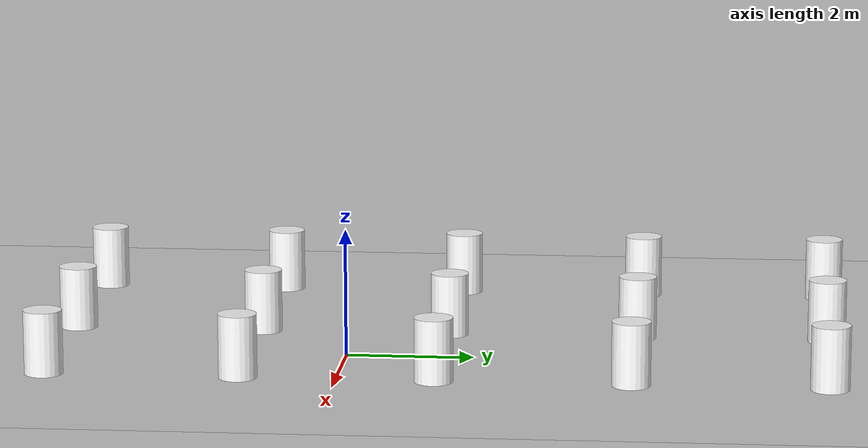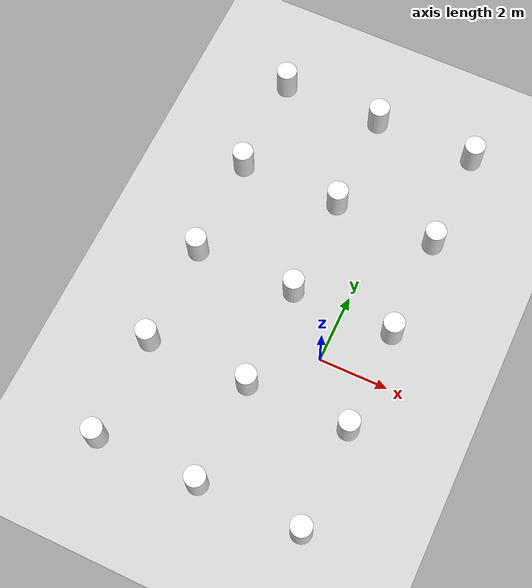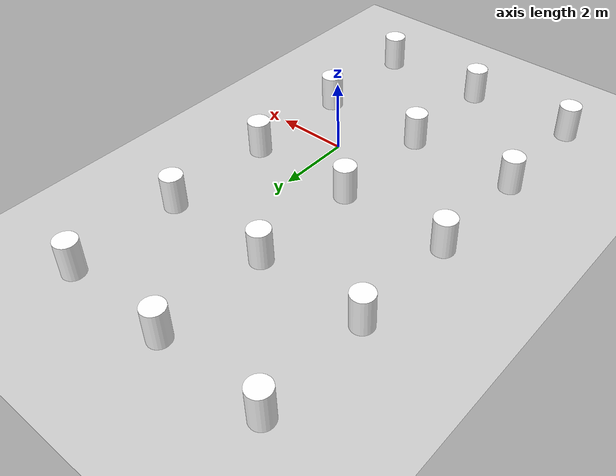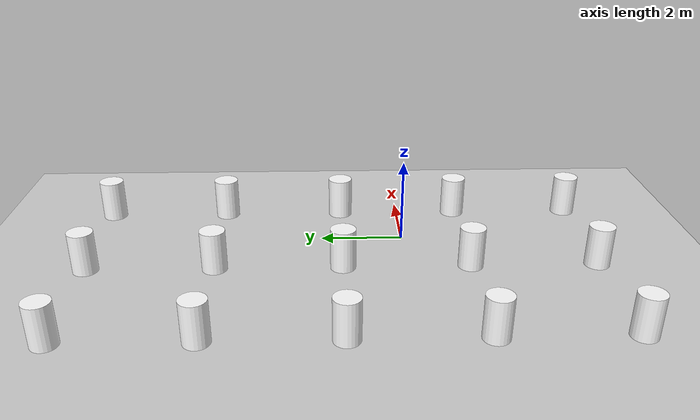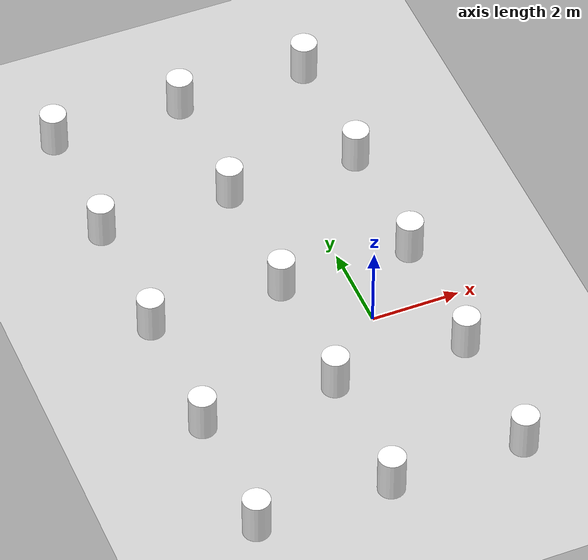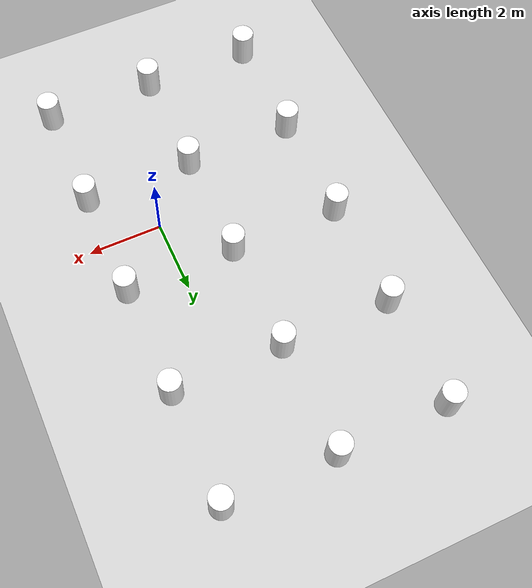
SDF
<?xml version="1.0"?>

<sdf version="1.6">
  <world name="turtlebot_world">
    <physics name="1ms" type="ignored">
      <max_step_size>0.001</max_step_size>
      <real_time_factor>1.0</real_time_factor>
    </physics>

    <plugin filename="ignition-gazebo-contact-system" name="gz::sim::systems::Contact" />
    <plugin filename="ignition-gazebo-imu-system" name="gz::sim::systems::Imu" />
    <plugin filename="ignition-gazebo-physics-system" name="gz::sim::systems::Physics" />
    <plugin filename="ignition-gazebo-scene-broadcaster-system"
      name="gz::sim::systems::SceneBroadcaster" />
    <plugin filename="ignition-gazebo-sensors-system" name="gz::sim::systems::Sensors" />
    <plugin filename="ignition-gazebo-user-commands-system" name="gz::sim::systems::UserCommands" />

    <spherical_coordinates>
      <surface_model>EARTH_WGS84</surface_model>
      <world_frame_orientation>ENU</world_frame_orientation>
      <latitude_deg>50.088384</latitude_deg>
      <longitude_deg>19.939128</longitude_deg>
      <elevation>0</elevation>
      <heading_deg>0</heading_deg>
    </spherical_coordinates>

    <light type="directional" name="sun">
      <cast_shadows>true</cast_shadows>
      <pose>0 0 10 0 0 0</pose>
      <diffuse>0.8 0.8 0.8 1</diffuse>
      <specular>0.2 0.2 0.2 1</specular>
      <attenuation>
        <range>1000</range>
        <constant>0.9</constant>
        <linear>0.01</linear>
        <quadratic>0.001</quadratic>
      </attenuation>
      <direction>-0.5 0.1 -0.9</direction>
    </light>

    <model name="ground_plane">
      <static>true</static>
      <link name="link">
        <collision name="collision">
          <geometry>
            <plane>
              <normal>0 0 1</normal>
              <size>100 100</size>
            </plane>
          </geometry>
        </collision>
        <visual name="visual">
          <geometry>
            <plane>
              <normal>0 0 1</normal>
              <size>100 100</size>
            </plane>
          </geometry>
          <material>
            <ambient>0.8 0.8 0.8 1</ambient>
            <diffuse>0.8 0.8 0.8 1</diffuse>
            <specular>0.8 0.8 0.8 1</specular>
          </material>
        </visual>
      </link>
    </model>

    <model name='ros_symbol'>
      <static>1</static>
      <link name='symbol'>

        <!-- Updated cylinder specifications with additional 1.5 meter distance -->
        <collision name='one_one'>
          <pose>-4.5 -4.5 0.5 0 0 0</pose>
          <geometry>
            <cylinder>
              <radius>0.3</radius>
              <length>1.0</length>
            </cylinder>
          </geometry>
          <max_contacts>10</max_contacts>
          <surface>
            <bounce/>
            <friction>
              <ode/>
            </friction>
            <contact>
              <ode/>
            </contact>
          </surface>
        </collision>

        <visual name='one_one'>
          <pose>-4.5 -4.5 0.5 0 0 0</pose>
          <geometry>
            <cylinder>
              <radius>0.3</radius>
              <length>1.0</length>
            </cylinder>
          </geometry>
          <material>
            <ambient>1 1 1 1</ambient>
            <diffuse>1 1 1 1</diffuse>
            <specular>1 1 1 1</specular>
          </material>
        </visual>

        <collision name='one_two'>
          <pose>-4.5 -1.5 0.5 0 0 0</pose>
          <geometry>
            <cylinder>
              <radius>0.3</radius>
              <length>1.0</length>
            </cylinder>
          </geometry>
          <max_contacts>10</max_contacts>
          <surface>
            <bounce/>
            <friction>
              <ode/>
            </friction>
            <contact>
              <ode/>
            </contact>
          </surface>
        </collision>

        <visual name='one_two'>
          <pose>-4.5 -1.5 0.5 0 0 0</pose>
          <geometry>
            <cylinder>
              <radius>0.3</radius>
              <length>1.0</length>
            </cylinder>
          </geometry>
          <material>
            <ambient>1 1 1 1</ambient>
            <diffuse>1 1 1 1</diffuse>
            <specular>1 1 1 1</specular>
          </material>
        </visual>

        <collision name='one_three'>
          <pose>-4.5 1.5 0.5 0 0 0</pose>
          <geometry>
            <cylinder>
              <radius>0.3</radius>
              <length>1.0</length>
            </cylinder>
          </geometry>
          <max_contacts>10</max_contacts>
          <surface>
            <bounce/>
            <friction>
              <ode/>
            </friction>
            <contact>
              <ode/>
            </contact>
          </surface>
        </collision>

        <visual name='one_three'>
          <pose>-4.5 1.5 0.5 0 0 0</pose>
          <geometry>
            <cylinder>
              <radius>0.3</radius>
              <length>1.0</length>
            </cylinder>
          </geometry>
          <material>
            <ambient>1 1 1 1</ambient>
            <diffuse>1 1 1 1</diffuse>
            <specular>1 1 1 1</specular>
          </material>
        </visual>

        <collision name='one_four'>
          <pose>-4.5 4.5 0.5 0 0 0</pose>
          <geometry>
            <cylinder>
              <radius>0.3</radius>
              <length>1.0</length>
            </cylinder>
          </geometry>
          <max_contacts>10</max_contacts>
          <surface>
            <bounce/>
            <friction>
              <ode/>
            </friction>
            <contact>
              <ode/>
            </contact>
          </surface>
        </collision>

        <visual name='one_four'>
          <pose>-4.5 4.5 0.5 0 0 0</pose>
          <geometry>
            <cylinder>
              <radius>0.3</radius>
              <length>1.0</length>
            </cylinder>
          </geometry>
          <material>
            <ambient>1 1 1 1</ambient>
            <diffuse>1 1 1 1</diffuse>
            <specular>1 1 1 1</specular>
          </material>
        </visual>

        <collision name='one_five'>
          <pose>-4.5 7.5 0.5 0 0 0</pose>
          <geometry>
            <cylinder>
              <radius>0.3</radius>
              <length>1.0</length>
            </cylinder>
          </geometry>
          <max_contacts>10</max_contacts>
          <surface>
            <bounce/>
            <friction>
              <ode/>
            </friction>
            <contact>
              <ode/>
            </contact>
          </surface>
        </collision>

        <visual name='one_five'>
          <pose>-4.5 7.5 0.5 0 0 0</pose>
          <geometry>
            <cylinder>
              <radius>0.3</radius>
              <length>1.0</length>
            </cylinder>
          </geometry>
          <material>
            <ambient>1 1 1 1</ambient>
            <diffuse>1 1 1 1</diffuse>
            <specular>1 1 1 1</specular>
          </material>
        </visual>

        <!-- Repeat the pattern for the 5x5 grid with increased distance -->
        <!-- The rest of the cylinders -->

        <!-- Two row -->
        <collision name='two_one'>
          <pose>-1.5 -4.5 0.5 0 0 0</pose>
          <geometry>
            <cylinder>
              <radius>0.3</radius>
              <length>1.0</length>
            </cylinder>
          </geometry>
          <max_contacts>10</max_contacts>
          <surface>
            <bounce/>
            <friction>
              <ode/>
            </friction>
            <contact>
              <ode/>
            </contact>
          </surface>
        </collision>

        <visual name='two_one'>
          <pose>-1.5 -4.5 0.5 0 0 0</pose>
          <geometry>
            <cylinder>
              <radius>0.3</radius>
              <length>1.0</length>
            </cylinder>
          </geometry>
          <material>
            <ambient>1 1 1 1</ambient>
            <diffuse>1 1 1 1</diffuse>
            <specular>1 1 1 1</specular>
          </material>
        </visual>

        <collision name='two_two'>
          <pose>-1.5 -1.5 0.5 0 0 0</pose>
          <geometry>
            <cylinder>
              <radius>0.3</radius>
              <length>1.0</length>
            </cylinder>
          </geometry>
          <max_contacts>10</max_contacts>
          <surface>
            <bounce/>
            <friction>
              <ode/>
            </friction>
            <contact>
              <ode/>
            </contact>
          </surface>
        </collision>

        <visual name='two_two'>
          <pose>-1.5 -1.5 0.5 0 0 0</pose>
          <geometry>
            <cylinder>
              <radius>0.3</radius>
              <length>1.0</length>
            </cylinder>
          </geometry>
          <material>
            <ambient>1 1 1 1</ambient>
            <diffuse>1 1 1 1</diffuse>
            <specular>1 1 1 1</specular>
          </material>
        </visual>

        <collision name='two_three'>
          <pose>-1.5 1.5 0.5 0 0 0</pose>
          <geometry>
            <cylinder>
              <radius>0.3</radius>
              <length>1.0</length>
            </cylinder>
          </geometry>
          <max_contacts>10</max_contacts>
          <surface>
            <bounce/>
            <friction>
              <ode/>
            </friction>
            <contact>
              <ode/>
            </contact>
          </surface>
        </collision>

        <visual name='two_three'>
          <pose>-1.5 1.5 0.5 0 0 0</pose>
          <geometry>
            <cylinder>
              <radius>0.3</radius>
              <length>1.0</length>
            </cylinder>
          </geometry>
          <material>
            <ambient>1 1 1 1</ambient>
            <diffuse>1 1 1 1</diffuse>
            <specular>1 1 1 1</specular>
          </material>
        </visual>

        <collision name='two_four'>
          <pose>-1.5 4.5 0.5 0 0 0</pose>
          <geometry>
            <cylinder>
              <radius>0.3</radius>
              <length>1.0</length>
            </cylinder>
          </geometry>
          <max_contacts>10</max_contacts>
          <surface>
            <bounce/>
            <friction>
              <ode/>
            </friction>
            <contact>
              <ode/>
            </contact>
          </surface>
        </collision>

        <visual name='two_four'>
          <pose>-1.5 4.5 0.5 0 0 0</pose>
          <geometry>
            <cylinder>
              <radius>0.3</radius>
              <length>1.0</length>
            </cylinder>
          </geometry>
          <material>
            <ambient>1 1 1 1</ambient>
            <diffuse>1 1 1 1</diffuse>
            <specular>1 1 1 1</specular>
          </material>
        </visual>

        <collision name='two_five'>
          <pose>-1.5 7.5 0.5 0 0 0</pose>
          <geometry>
            <cylinder>
              <radius>0.3</radius>
              <length>1.0</length>
            </cylinder>
          </geometry>
          <max_contacts>10</max_contacts>
          <surface>
            <bounce/>
            <friction>
              <ode/>
            </friction>
            <contact>
              <ode/>
            </contact>
          </surface>
        </collision>

        <visual name='two_five'>
          <pose>-1.5 7.5 0.5 0 0 0</pose>
          <geometry>
            <cylinder>
              <radius>0.3</radius>
              <length>1.0</length>
            </cylinder>
          </geometry>
          <material>
            <ambient>1 1 1 1</ambient>
            <diffuse>1 1 1 1</diffuse>
            <specular>1 1 1 1</specular>
          </material>
        </visual>

        <!-- Three row -->
        <collision name='three_one'>
          <pose>1.5 -4.5 0.5 0 0 0</pose>
          <geometry>
            <cylinder>
              <radius>0.3</radius>
              <length>1.0</length>
            </cylinder>
          </geometry>
          <max_contacts>10</max_contacts>
          <surface>
            <bounce/>
            <friction>
              <ode/>
            </friction>
            <contact>
              <ode/>
            </contact>
          </surface>
        </collision>

        <visual name='three_one'>
          <pose>1.5 -4.5 0.5 0 0 0</pose>
          <geometry>
            <cylinder>
              <radius>0.3</radius>
              <length>1.0</length>
            </cylinder>
          </geometry>
          <material>
            <ambient>1 1 1 1</ambient>
            <diffuse>1 1 1 1</diffuse>
            <specular>1 1 1 1</specular>
          </material>
        </visual>

        <collision name='three_two'>
          <pose>1.5 -1.5 0.5 0 0 0</pose>
          <geometry>
            <cylinder>
              <radius>0.3</radius>
              <length>1.0</length>
            </cylinder>
          </geometry>
          <max_contacts>10</max_contacts>
          <surface>
            <bounce/>
            <friction>
              <ode/>
            </friction>
            <contact>
              <ode/>
            </contact>
          </surface>
        </collision>

        <visual name='three_two'>
          <pose>1.5 -1.5 0.5 0 0 0</pose>
          <geometry>
            <cylinder>
              <radius>0.3</radius>
              <length>1.0</length>
            </cylinder>
          </geometry>
          <material>
            <ambient>1 1 1 1</ambient>
            <diffuse>1 1 1 1</diffuse>
            <specular>1 1 1 1</specular>
          </material>
        </visual>

        <collision name='three_three'>
          <pose>1.5 1.5 0.5 0 0 0</pose>
          <geometry>
            <cylinder>
              <radius>0.3</radius>
              <length>1.0</length>
            </cylinder>
          </geometry>
          <max_contacts>10</max_contacts>
          <surface>
            <bounce/>
            <friction>
              <ode/>
            </friction>
            <contact>
              <ode/>
            </contact>
          </surface>
        </collision>

        <visual name='three_three'>
          <pose>1.5 1.5 0.5 0 0 0</pose>
          <geometry>
            <cylinder>
              <radius>0.3</radius>
              <length>1.0</length>
            </cylinder>
          </geometry>
          <material>
            <ambient>1 1 1 1</ambient>
            <diffuse>1 1 1 1</diffuse>
            <specular>1 1 1 1</specular>
          </material>
        </visual>

        <collision name='three_four'>
          <pose>1.5 4.5 0.5 0 0 0</pose>
          <geometry>
            <cylinder>
              <radius>0.3</radius>
              <length>1.0</length>
            </cylinder>
          </geometry>
          <max_contacts>10</max_contacts>
          <surface>
            <bounce/>
            <friction>
              <ode/>
            </friction>
            <contact>
              <ode/>
            </contact>
          </surface>
        </collision>

        <visual name='three_four'>
          <pose>1.5 4.5 0.5 0 0 0</pose>
          <geometry>
            <cylinder>
              <radius>0.3</radius>
              <length>1.0</length>
            </cylinder>
          </geometry>
          <material>
            <ambient>1 1 1 1</ambient>
            <diffuse>1 1 1 1</diffuse>
            <specular>1 1 1 1</specular>
          </material>
        </visual>

        <collision name='three_five'>
          <pose>1.5 7.5 0.5 0 0 0</pose>
          <geometry>
            <cylinder>
              <radius>0.3</radius>
              <length>1.0</length>
            </cylinder>
          </geometry>
          <max_contacts>10</max_contacts>
          <surface>
            <bounce/>
            <friction>
              <ode/>
            </friction>
            <contact>
              <ode/>
            </contact>
          </surface>
        </collision>

        <visual name='three_five'>
          <pose>1.5 7.5 0.5 0 0 0</pose>
          <geometry>
            <cylinder>
              <radius>0.3</radius>
              <length>1.0</length>
            </cylinder>
          </geometry>
          <material>
            <ambient>1 1 1 1</ambient>
            <diffuse>1 1 1 1</diffuse>
            <specular>1 1 1 1</specular>
          </material>
        </visual>

    </link>
  </model>

  </world>
</sdf>
